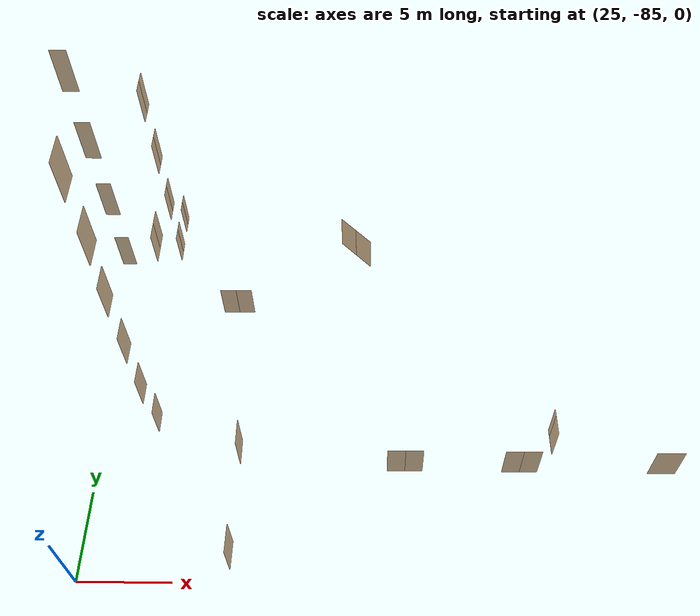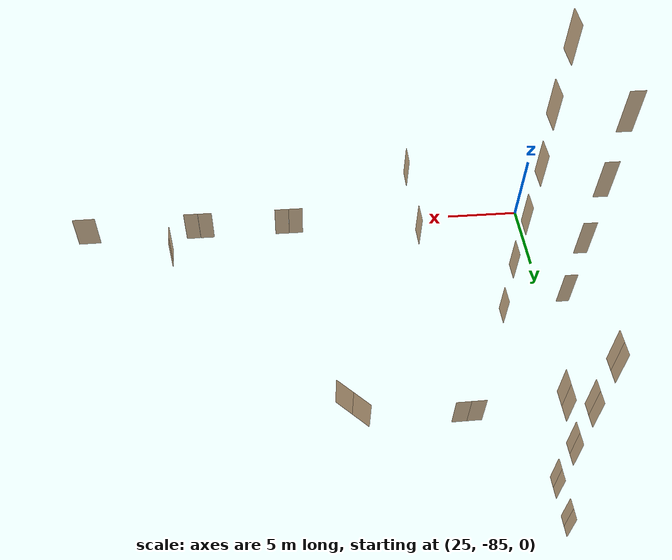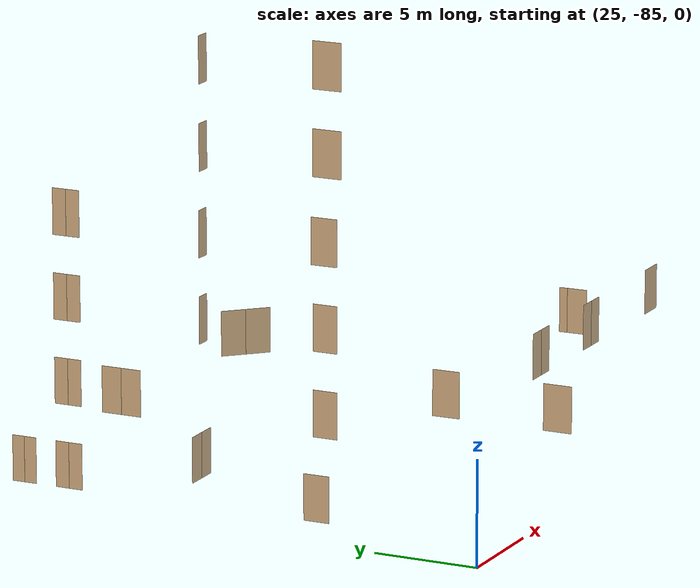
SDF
<sdf version="1.7">
 <world name="sim_world">
  <model name="Snull15">
   <pose>28.084941940783317 -75.57958406451849 0.0 0 0 1.5806374847145241</pose>
   <link name="right">
    <pose>0 0 1.11 0 0 0</pose>
    <visual name="right_visual">
     <geometry><box><size>1.2572084339557512 0.03 2.2</size></box></geometry>
     <material>
      <ambient>0.5 0.25 0 0.6</ambient>
      <diffuse>0.5 0.25 0 0.6</diffuse>
      <pbr><metal><metalness>0.0</metalness></metal></pbr>
     </material>
    </visual>
    <collision name="right_collision">
     <geometry><box><size>1.2572084339557512 0.03 2.2</size></box></geometry>
     <surface><contact><collide_bitmask>0x02</collide_bitmask></contact></surface>
    </collision>
    <inertial>
     <mass>50.0</mass>
     <inertia><ixx>20.17041666666667</ixx><iyy>26.752387693372807</iyy><izz>6.589471026706136</izz></inertia>
    </inertial>
   </link>
   <joint name="right_joint" type="revolute">
    <parent>world</parent>
    <child>right</child>
    <axis><xyz>0 0 1</xyz><limit><lower>0</lower><upper>1.57</upper></limit></axis>
    <pose>0.6336042169778756 0 0 0 0 0</pose>
   </joint>
   <plugin name="register_component" filename="libregister_component.so">
    <component name="Door">
     <v_max_door>0.5</v_max_door>
     <a_max_door>0.3</a_max_door>
     <a_nom_door>0.15</a_nom_door>
     <dx_min_door>0.01</dx_min_door>
     <f_max_door>500.0</f_max_door>
     <ros_interface>true</ros_interface>
     <door name="Snull15" type="SwingDoor" left_joint_name="empty_joint" right_joint_name="right_joint"/>
    </component>
   </plugin>
  </model>
  <model name="Snull19">
   <pose>27.81230631370644 -60.652111413956575 0.0 0 0 1.5707963267948966</pose>
   <link name="right">
    <pose>0.3098140611581979 0 1.11 0 0 0</pose>
    <visual name="right_visual">
     <geometry><box><size>0.6096281223163957 0.03 2.2</size></box></geometry>
     <material>
      <ambient>0.5 0.25 0 0.6</ambient>
      <diffuse>0.5 0.25 0 0.6</diffuse>
      <pbr><metal><metalness>0.0</metalness></metal></pbr>
     </material>
    </visual>
    <collision name="right_collision">
     <geometry><box><size>0.6096281223163957 0.03 2.2</size></box></geometry>
     <surface><contact><collide_bitmask>0x02</collide_bitmask></contact></surface>
    </collision>
    <inertial>
     <mass>50.0</mass>
     <inertia><ixx>20.17041666666667</ixx><iyy>21.71519353132923</iyy><izz>1.55227686466256</izz></inertia>
    </inertial>
   </link>
   <joint name="right_joint" type="prismatic">
    <parent>world</parent>
    <child>right</child>
    <axis>
     <xyz>1 0 0</xyz>
     <limit><lower>0.0</lower><upper>0.6196281223163957</upper><effort>500.0</effort></limit>
    </axis>
   </joint>
   <link name="left">
    <pose>-0.3098140611581979 0 1.11 0 0 0</pose>
    <visual name="left_visual">
     <geometry><box><size>0.6096281223163957 0.03 2.2</size></box></geometry>
     <material>
      <ambient>0.5 0.25 0 0.6</ambient>
      <diffuse>0.5 0.25 0 0.6</diffuse>
      <pbr><metal><metalness>0.0</metalness></metal></pbr>
     </material>
    </visual>
    <collision name="left_collision">
     <geometry><box><size>0.6096281223163957 0.03 2.2</size></box></geometry>
     <surface><contact><collide_bitmask>0x02</collide_bitmask></contact></surface>
    </collision>
    <inertial>
     <mass>50.0</mass>
     <inertia><ixx>20.17041666666667</ixx><iyy>21.71519353132923</iyy><izz>1.55227686466256</izz></inertia>
    </inertial>
   </link>
   <joint name="left_joint" type="prismatic">
    <parent>world</parent>
    <child>left</child>
    <axis>
     <xyz>1 0 0</xyz>
     <limit><lower>-0.6196281223163957</lower><upper>0.0</upper><effort>500.0</effort></limit>
    </axis>
   </joint>
   <plugin name="register_component" filename="libregister_component.so">
    <component name="Door">
     <v_max_door>0.2</v_max_door>
     <a_max_door>0.2</a_max_door>
     <a_nom_door>0.08</a_nom_door>
     <dx_min_door>0.001</dx_min_door>
     <f_max_door>100.0</f_max_door>
     <ros_interface>true</ros_interface>
     <door name="Snull19" type="DoubleSlidingDoor" left_joint_name="left_joint" right_joint_name="right_joint"/>
    </component>
   </plugin>
  </model>
  <model name="Snull20">
   <pose>27.81230631370644 -62.99546354030538 0.0 0 0 1.5707963267948966</pose>
   <link name="right">
    <pose>0.34362282044580716 0 1.11 0 0 0</pose>
    <visual name="right_visual">
     <geometry><box><size>0.6772456408916143 0.03 2.2</size></box></geometry>
     <material>
      <ambient>0.5 0.25 0 0.6</ambient>
      <diffuse>0.5 0.25 0 0.6</diffuse>
      <pbr><metal><metalness>0.0</metalness></metal></pbr>
     </material>
    </visual>
    <collision name="right_collision">
     <geometry><box><size>0.6772456408916143 0.03 2.2</size></box></geometry>
     <surface><contact><collide_bitmask>0x02</collide_bitmask></contact></surface>
    </collision>
    <inertial>
     <mass>50.0</mass>
     <inertia><ixx>20.17041666666667</ixx><iyy>22.077756908777896</iyy><izz>1.9148402421112227</izz></inertia>
    </inertial>
   </link>
   <joint name="right_joint" type="prismatic">
    <parent>world</parent>
    <child>right</child>
    <axis>
     <xyz>1 0 0</xyz>
     <limit><lower>0.0</lower><upper>0.6872456408916143</upper><effort>500.0</effort></limit>
    </axis>
   </joint>
   <link name="left">
    <pose>-0.34362282044580716 0 1.11 0 0 0</pose>
    <visual name="left_visual">
     <geometry><box><size>0.6772456408916143 0.03 2.2</size></box></geometry>
     <material>
      <ambient>0.5 0.25 0 0.6</ambient>
      <diffuse>0.5 0.25 0 0.6</diffuse>
      <pbr><metal><metalness>0.0</metalness></metal></pbr>
     </material>
    </visual>
    <collision name="left_collision">
     <geometry><box><size>0.6772456408916143 0.03 2.2</size></box></geometry>
     <surface><contact><collide_bitmask>0x02</collide_bitmask></contact></surface>
    </collision>
    <inertial>
     <mass>50.0</mass>
     <inertia><ixx>20.17041666666667</ixx><iyy>22.077756908777896</iyy><izz>1.9148402421112227</izz></inertia>
    </inertial>
   </link>
   <joint name="left_joint" type="prismatic">
    <parent>world</parent>
    <child>left</child>
    <axis>
     <xyz>1 0 0</xyz>
     <limit><lower>-0.6872456408916143</lower><upper>0.0</upper><effort>500.0</effort></limit>
    </axis>
   </joint>
   <plugin name="register_component" filename="libregister_component.so">
    <component name="Door">
     <v_max_door>0.2</v_max_door>
     <a_max_door>0.2</a_max_door>
     <a_nom_door>0.08</a_nom_door>
     <dx_min_door>0.001</dx_min_door>
     <f_max_door>100.0</f_max_door>
     <ros_interface>true</ros_interface>
     <door name="Snull20" type="DoubleSlidingDoor" left_joint_name="left_joint" right_joint_name="right_joint"/>
    </component>
   </plugin>
  </model>
  <model name="Snull21">
   <pose>31.943863644849326 -67.73421573386099 0.0 0 0 -3.1266463520142143</pose>
   <link name="right">
    <pose>0.4677836453547332 0 1.11 0 0 0</pose>
    <visual name="right_visual">
     <geometry><box><size>0.9255672907094664 0.03 2.2</size></box></geometry>
     <material>
      <ambient>0.5 0.25 0 0.6</ambient>
      <diffuse>0.5 0.25 0 0.6</diffuse>
      <pbr><metal><metalness>0.0</metalness></metal></pbr>
     </material>
    </visual>
    <collision name="right_collision">
     <geometry><box><size>0.9255672907094664 0.03 2.2</size></box></geometry>
     <surface><contact><collide_bitmask>0x02</collide_bitmask></contact></surface>
    </collision>
    <inertial>
     <mass>50.0</mass>
     <inertia><ixx>20.17041666666667</ixx><iyy>23.736145040130264</iyy><izz>3.573228373463592</izz></inertia>
    </inertial>
   </link>
   <joint name="right_joint" type="revolute">
    <parent>world</parent>
    <child>right</child>
    <axis><xyz>0 0 1</xyz><limit><lower>0</lower><upper>1.57</upper></limit></axis>
    <pose>0.4677836453547332 0 0 0 0 0</pose>
   </joint>
   <link name="left">
    <pose>-0.4677836453547332 0 1.11 0 0 0</pose>
    <visual name="left_visual">
     <geometry><box><size>0.9255672907094664 0.03 2.2</size></box></geometry>
     <material>
      <ambient>0.5 0.25 0 0.6</ambient>
      <diffuse>0.5 0.25 0 0.6</diffuse>
      <pbr><metal><metalness>0.0</metalness></metal></pbr>
     </material>
    </visual>
    <collision name="left_collision">
     <geometry><box><size>0.9255672907094664 0.03 2.2</size></box></geometry>
     <surface><contact><collide_bitmask>0x02</collide_bitmask></contact></surface>
    </collision>
    <inertial>
     <mass>50.0</mass>
     <inertia><ixx>20.17041666666667</ixx><iyy>23.736145040130264</iyy><izz>3.573228373463592</izz></inertia>
    </inertial>
   </link>
   <joint name="left_joint" type="revolute">
    <parent>world</parent>
    <child>left</child>
    <axis><xyz>0 0 1</xyz><limit><lower>-1.57</lower><upper>0</upper></limit></axis>
    <pose>-0.4677836453547332 0 0 0 0 0</pose>
   </joint>
   <plugin name="register_component" filename="libregister_component.so">
    <component name="Door">
     <v_max_door>0.5</v_max_door>
     <a_max_door>0.3</a_max_door>
     <a_nom_door>0.15</a_nom_door>
     <dx_min_door>0.01</dx_min_door>
     <f_max_door>500.0</f_max_door>
     <ros_interface>true</ros_interface>
     <door name="Snull21" type="DoubleSwingDoor" left_joint_name="left_joint" right_joint_name="right_joint"/>
    </component>
   </plugin>
  </model>
  <model name="0null15">
   <pose>28.038363887540584 -76.04984505096512 4.0 0 0 1.565694645745355</pose>
   <link name="right">
    <pose>0 0 1.11 0 0 0</pose>
    <visual name="right_visual">
     <geometry><box><size>1.1975727472500945 0.03 2.2</size></box></geometry>
     <material>
      <ambient>0.5 0.25 0 0.6</ambient>
      <diffuse>0.5 0.25 0 0.6</diffuse>
      <pbr><metal><metalness>0.0</metalness></metal></pbr>
     </material>
    </visual>
    <collision name="right_collision">
     <geometry><box><size>1.1975727472500945 0.03 2.2</size></box></geometry>
     <surface><contact><collide_bitmask>0x02</collide_bitmask></contact></surface>
    </collision>
    <inertial>
     <mass>50.0</mass>
     <inertia><ixx>20.17041666666667</ixx><iyy>26.14241868731725</iyy><izz>5.979502020650578</izz></inertia>
    </inertial>
   </link>
   <joint name="right_joint" type="revolute">
    <parent>world</parent>
    <child>right</child>
    <axis><xyz>0 0 1</xyz><limit><lower>0</lower><upper>1.57</upper></limit></axis>
    <pose>0.6037863736250473 0 0 0 0 0</pose>
   </joint>
   <plugin name="register_component" filename="libregister_component.so">
    <component name="Door">
     <v_max_door>0.5</v_max_door>
     <a_max_door>0.3</a_max_door>
     <a_nom_door>0.15</a_nom_door>
     <dx_min_door>0.01</dx_min_door>
     <f_max_door>500.0</f_max_door>
     <ros_interface>true</ros_interface>
     <door name="0null15" type="SwingDoor" left_joint_name="empty_joint" right_joint_name="right_joint"/>
    </component>
   </plugin>
  </model>
  <model name="0null20">
   <pose>27.81230631370644 -62.99546354030538 4.0 0 0 1.5707963267948966</pose>
   <link name="right">
    <pose>0.34362282044580716 0 1.11 0 0 0</pose>
    <visual name="right_visual">
     <geometry><box><size>0.6772456408916143 0.03 2.2</size></box></geometry>
     <material>
      <ambient>0.5 0.25 0 0.6</ambient>
      <diffuse>0.5 0.25 0 0.6</diffuse>
      <pbr><metal><metalness>0.0</metalness></metal></pbr>
     </material>
    </visual>
    <collision name="right_collision">
     <geometry><box><size>0.6772456408916143 0.03 2.2</size></box></geometry>
     <surface><contact><collide_bitmask>0x02</collide_bitmask></contact></surface>
    </collision>
    <inertial>
     <mass>50.0</mass>
     <inertia><ixx>20.17041666666667</ixx><iyy>22.077756908777896</iyy><izz>1.9148402421112227</izz></inertia>
    </inertial>
   </link>
   <joint name="right_joint" type="prismatic">
    <parent>world</parent>
    <child>right</child>
    <axis>
     <xyz>1 0 0</xyz>
     <limit><lower>0.0</lower><upper>0.6872456408916143</upper><effort>500.0</effort></limit>
    </axis>
   </joint>
   <link name="left">
    <pose>-0.34362282044580716 0 1.11 0 0 0</pose>
    <visual name="left_visual">
     <geometry><box><size>0.6772456408916143 0.03 2.2</size></box></geometry>
     <material>
      <ambient>0.5 0.25 0 0.6</ambient>
      <diffuse>0.5 0.25 0 0.6</diffuse>
      <pbr><metal><metalness>0.0</metalness></metal></pbr>
     </material>
    </visual>
    <collision name="left_collision">
     <geometry><box><size>0.6772456408916143 0.03 2.2</size></box></geometry>
     <surface><contact><collide_bitmask>0x02</collide_bitmask></contact></surface>
    </collision>
    <inertial>
     <mass>50.0</mass>
     <inertia><ixx>20.17041666666667</ixx><iyy>22.077756908777896</iyy><izz>1.9148402421112227</izz></inertia>
    </inertial>
   </link>
   <joint name="left_joint" type="prismatic">
    <parent>world</parent>
    <child>left</child>
    <axis>
     <xyz>1 0 0</xyz>
     <limit><lower>-0.6872456408916143</lower><upper>0.0</upper><effort>500.0</effort></limit>
    </axis>
   </joint>
   <plugin name="register_component" filename="libregister_component.so">
    <component name="Door">
     <v_max_door>0.2</v_max_door>
     <a_max_door>0.2</a_max_door>
     <a_nom_door>0.08</a_nom_door>
     <dx_min_door>0.001</dx_min_door>
     <f_max_door>100.0</f_max_door>
     <ros_interface>true</ros_interface>
     <door name="0null20" type="DoubleSlidingDoor" left_joint_name="left_joint" right_joint_name="right_joint"/>
    </component>
   </plugin>
  </model>
  <model name="0null33">
   <pose>27.455960870701546 -65.96759138259338 4.0 0 0 1.5707963267948966</pose>
   <link name="right">
    <pose>0.4972370533547412 0 1.11 0 0 0</pose>
    <visual name="right_visual">
     <geometry><box><size>0.9844741067094824 0.03 2.2</size></box></geometry>
     <material>
      <ambient>0.5 0.25 0 0.6</ambient>
      <diffuse>0.5 0.25 0 0.6</diffuse>
      <pbr><metal><metalness>0.0</metalness></metal></pbr>
     </material>
    </visual>
    <collision name="right_collision">
     <geometry><box><size>0.9844741067094824 0.03 2.2</size></box></geometry>
     <surface><contact><collide_bitmask>0x02</collide_bitmask></contact></surface>
    </collision>
    <inertial>
     <mass>50.0</mass>
     <inertia><ixx>20.17041666666667</ixx><iyy>24.204955278255976</iyy><izz>4.042038611589306</izz></inertia>
    </inertial>
   </link>
   <joint name="right_joint" type="revolute">
    <parent>world</parent>
    <child>right</child>
    <axis><xyz>0 0 -1</xyz><limit><lower>0</lower><upper>1.57</upper></limit></axis>
    <pose>0.4972370533547412 0 0 0 0 0</pose>
   </joint>
   <link name="left">
    <pose>-0.4972370533547412 0 1.11 0 0 0</pose>
    <visual name="left_visual">
     <geometry><box><size>0.9844741067094824 0.03 2.2</size></box></geometry>
     <material>
      <ambient>0.5 0.25 0 0.6</ambient>
      <diffuse>0.5 0.25 0 0.6</diffuse>
      <pbr><metal><metalness>0.0</metalness></metal></pbr>
     </material>
    </visual>
    <collision name="left_collision">
     <geometry><box><size>0.9844741067094824 0.03 2.2</size></box></geometry>
     <surface><contact><collide_bitmask>0x02</collide_bitmask></contact></surface>
    </collision>
    <inertial>
     <mass>50.0</mass>
     <inertia><ixx>20.17041666666667</ixx><iyy>24.204955278255976</iyy><izz>4.042038611589306</izz></inertia>
    </inertial>
   </link>
   <joint name="left_joint" type="revolute">
    <parent>world</parent>
    <child>left</child>
    <axis><xyz>0 0 -1</xyz><limit><lower>-1.57</lower><upper>0</upper></limit></axis>
    <pose>-0.4972370533547412 0 0 0 0 0</pose>
   </joint>
   <plugin name="register_component" filename="libregister_component.so">
    <component name="Door">
     <v_max_door>0.5</v_max_door>
     <a_max_door>0.3</a_max_door>
     <a_nom_door>0.15</a_nom_door>
     <dx_min_door>0.01</dx_min_door>
     <f_max_door>500.0</f_max_door>
     <ros_interface>true</ros_interface>
     <door name="0null33" type="DoubleSwingDoor" left_joint_name="left_joint" right_joint_name="right_joint"/>
    </component>
   </plugin>
  </model>
  <model name="0null44">
   <pose>41.968468804838864 -80.45021095471002 4.0 0 0 0.0</pose>
   <link name="right">
    <pose>0.450033603405144 0 1.11 0 0 0</pose>
    <visual name="right_visual">
     <geometry><box><size>0.890067206810288 0.03 2.2</size></box></geometry>
     <material>
      <ambient>0.5 0.25 0 0.6</ambient>
      <diffuse>0.5 0.25 0 0.6</diffuse>
      <pbr><metal><metalness>0.0</metalness></metal></pbr>
     </material>
    </visual>
    <collision name="right_collision">
     <geometry><box><size>0.890067206810288 0.03 2.2</size></box></geometry>
     <surface><contact><collide_bitmask>0x02</collide_bitmask></contact></surface>
    </collision>
    <inertial>
     <mass>50.0</mass>
     <inertia><ixx>20.17041666666667</ixx><iyy>23.467581802662785</iyy><izz>3.3046651359961166</izz></inertia>
    </inertial>
   </link>
   <joint name="right_joint" type="revolute">
    <parent>world</parent>
    <child>right</child>
    <axis><xyz>0 0 -1</xyz><limit><lower>0</lower><upper>1.57</upper></limit></axis>
    <pose>0.450033603405144 0 0 0 0 0</pose>
   </joint>
   <link name="left">
    <pose>-0.450033603405144 0 1.11 0 0 0</pose>
    <visual name="left_visual">
     <geometry><box><size>0.890067206810288 0.03 2.2</size></box></geometry>
     <material>
      <ambient>0.5 0.25 0 0.6</ambient>
      <diffuse>0.5 0.25 0 0.6</diffuse>
      <pbr><metal><metalness>0.0</metalness></metal></pbr>
     </material>
    </visual>
    <collision name="left_collision">
     <geometry><box><size>0.890067206810288 0.03 2.2</size></box></geometry>
     <surface><contact><collide_bitmask>0x02</collide_bitmask></contact></surface>
    </collision>
    <inertial>
     <mass>50.0</mass>
     <inertia><ixx>20.17041666666667</ixx><iyy>23.467581802662785</iyy><izz>3.3046651359961166</izz></inertia>
    </inertial>
   </link>
   <joint name="left_joint" type="revolute">
    <parent>world</parent>
    <child>left</child>
    <axis><xyz>0 0 -1</xyz><limit><lower>-1.57</lower><upper>0</upper></limit></axis>
    <pose>-0.450033603405144 0 0 0 0 0</pose>
   </joint>
   <plugin name="register_component" filename="libregister_component.so">
    <component name="Door">
     <v_max_door>0.5</v_max_door>
     <a_max_door>0.3</a_max_door>
     <a_nom_door>0.15</a_nom_door>
     <dx_min_door>0.01</dx_min_door>
     <f_max_door>500.0</f_max_door>
     <ros_interface>true</ros_interface>
     <door name="0null44" type="DoubleSwingDoor" left_joint_name="left_joint" right_joint_name="right_joint"/>
    </component>
   </plugin>
  </model>
  <model name="0null45">
   <pose>47.80160922973525 -80.45021095471002 4.0 0 0 0.0</pose>
   <link name="right">
    <pose>0.45003360340514575 0 1.11 0 0 0</pose>
    <visual name="right_visual">
     <geometry><box><size>0.8900672068102915 0.03 2.2</size></box></geometry>
     <material>
      <ambient>0.5 0.25 0 0.6</ambient>
      <diffuse>0.5 0.25 0 0.6</diffuse>
      <pbr><metal><metalness>0.0</metalness></metal></pbr>
     </material>
    </visual>
    <collision name="right_collision">
     <geometry><box><size>0.8900672068102915 0.03 2.2</size></box></geometry>
     <surface><contact><collide_bitmask>0x02</collide_bitmask></contact></surface>
    </collision>
    <inertial>
     <mass>50.0</mass>
     <inertia><ixx>20.17041666666667</ixx><iyy>23.467581802662814</iyy><izz>3.3046651359961428</izz></inertia>
    </inertial>
   </link>
   <joint name="right_joint" type="revolute">
    <parent>world</parent>
    <child>right</child>
    <axis><xyz>0 0 -1</xyz><limit><lower>0</lower><upper>1.57</upper></limit></axis>
    <pose>0.45003360340514575 0 0 0 0 0</pose>
   </joint>
   <link name="left">
    <pose>-0.45003360340514575 0 1.11 0 0 0</pose>
    <visual name="left_visual">
     <geometry><box><size>0.8900672068102915 0.03 2.2</size></box></geometry>
     <material>
      <ambient>0.5 0.25 0 0.6</ambient>
      <diffuse>0.5 0.25 0 0.6</diffuse>
      <pbr><metal><metalness>0.0</metalness></metal></pbr>
     </material>
    </visual>
    <collision name="left_collision">
     <geometry><box><size>0.8900672068102915 0.03 2.2</size></box></geometry>
     <surface><contact><collide_bitmask>0x02</collide_bitmask></contact></surface>
    </collision>
    <inertial>
     <mass>50.0</mass>
     <inertia><ixx>20.17041666666667</ixx><iyy>23.467581802662814</iyy><izz>3.3046651359961428</izz></inertia>
    </inertial>
   </link>
   <joint name="left_joint" type="revolute">
    <parent>world</parent>
    <child>left</child>
    <axis><xyz>0 0 -1</xyz><limit><lower>-1.57</lower><upper>0</upper></limit></axis>
    <pose>-0.45003360340514575 0 0 0 0 0</pose>
   </joint>
   <plugin name="register_component" filename="libregister_component.so">
    <component name="Door">
     <v_max_door>0.5</v_max_door>
     <a_max_door>0.3</a_max_door>
     <a_nom_door>0.15</a_nom_door>
     <dx_min_door>0.01</dx_min_door>
     <f_max_door>500.0</f_max_door>
     <ros_interface>true</ros_interface>
     <door name="0null45" type="DoubleSwingDoor" left_joint_name="left_joint" right_joint_name="right_joint"/>
    </component>
   </plugin>
  </model>
  <model name="0null46">
   <pose>49.5582459022514 -78.73606392114397 4.0 0 0 1.5927314753126312</pose>
   <link name="right">
    <pose>0.5027852228706735 0 1.11 0 0 0</pose>
    <visual name="right_visual">
     <geometry><box><size>0.3922281782965389 0.03 2.2</size></box></geometry>
     <material>
      <ambient>0.5 0.25 0 0.6</ambient>
      <diffuse>0.5 0.25 0 0.6</diffuse>
      <pbr><metal><metalness>0.0</metalness></metal></pbr>
     </material>
    </visual>
    <collision name="right_collision">
     <geometry><box><size>0.3922281782965389 0.03 2.2</size></box></geometry>
     <surface><contact><collide_bitmask>0x02</collide_bitmask></contact></surface>
    </collision>
    <inertial>
     <mass>50.0</mass>
     <inertia><ixx>20.17041666666667</ixx><iyy>20.807678932707592</iyy><izz>0.644762266040923</izz></inertia>
    </inertial>
   </link>
   <joint name="right_joint" type="revolute">
    <parent>world</parent>
    <child>right</child>
    <axis><xyz>0 0 -1</xyz><limit><lower>0</lower><upper>1.57</upper></limit></axis>
    <pose>0.20111408914826945 0 0 0 0 0</pose>
   </joint>
   <link name="left">
    <pose>-0.20111408914826945 0 1.11 0 0 0</pose>
    <visual name="left_visual">
     <geometry><box><size>0.995570445741347 0.03 2.2</size></box></geometry>
     <material>
      <ambient>0.5 0.25 0 0.6</ambient>
      <diffuse>0.5 0.25 0 0.6</diffuse>
      <pbr><metal><metalness>0.0</metalness></metal></pbr>
     </material>
    </visual>
    <collision name="left_collision">
     <geometry><box><size>0.995570445741347 0.03 2.2</size></box></geometry>
     <surface><contact><collide_bitmask>0x02</collide_bitmask></contact></surface>
    </collision>
    <inertial>
     <mass>50.0</mass>
     <inertia><ixx>20.17041666666667</ixx><iyy>24.296502135140106</iyy><izz>4.133585468473435</izz></inertia>
    </inertial>
   </link>
   <joint name="left_joint" type="revolute">
    <parent>world</parent>
    <child>left</child>
    <axis><xyz>0 0 -1</xyz><limit><lower>-1.57</lower><upper>0</upper></limit></axis>
    <pose>-0.5027852228706735 0 0 0 0 0</pose>
   </joint>
   <plugin name="register_component" filename="libregister_component.so">
    <component name="Door">
     <v_max_door>0.5</v_max_door>
     <a_max_door>0.3</a_max_door>
     <a_nom_door>0.15</a_nom_door>
     <dx_min_door>0.01</dx_min_door>
     <f_max_door>500.0</f_max_door>
     <ros_interface>true</ros_interface>
     <door name="0null46" type="DoubleSwingDoor" left_joint_name="left_joint" right_joint_name="right_joint"/>
    </component>
   </plugin>
  </model>
  <model name="0null47">
   <pose>55.0205727513721 -80.46839413060519 4.0 0 0 -3.1302739790294476</pose>
   <link name="right">
    <pose>0 0 1.11 0 0 0</pose>
    <visual name="right_visual">
     <geometry><box><size>1.4018815002880707 0.03 2.2</size></box></geometry>
     <material>
      <ambient>0.5 0.25 0 0.6</ambient>
      <diffuse>0.5 0.25 0 0.6</diffuse>
      <pbr><metal><metalness>0.0</metalness></metal></pbr>
     </material>
    </visual>
    <collision name="right_collision">
     <geometry><box><size>1.4018815002880707 0.03 2.2</size></box></geometry>
     <surface><contact><collide_bitmask>0x02</collide_bitmask></contact></surface>
    </collision>
    <inertial>
     <mass>50.0</mass>
     <inertia><ixx>20.17041666666667</ixx><iyy>28.355298920208057</iyy><izz>8.192382253541382</izz></inertia>
    </inertial>
   </link>
   <joint name="right_joint" type="revolute">
    <parent>world</parent>
    <child>right</child>
    <axis><xyz>0 0 -1</xyz><limit><lower>0</lower><upper>1.57</upper></limit></axis>
    <pose>0.7059407501440353 0 0 0 0 0</pose>
   </joint>
   <plugin name="register_component" filename="libregister_component.so">
    <component name="Door">
     <v_max_door>0.5</v_max_door>
     <a_max_door>0.3</a_max_door>
     <a_nom_door>0.15</a_nom_door>
     <dx_min_door>0.01</dx_min_door>
     <f_max_door>500.0</f_max_door>
     <ros_interface>true</ros_interface>
     <door name="0null47" type="SwingDoor" left_joint_name="empty_joint" right_joint_name="right_joint"/>
    </component>
   </plugin>
  </model>
  <model name="0null58">
   <pose>33.55398947093303 -79.47173580256128 4.0 0 0 -1.5568600437993017</pose>
   <link name="right">
    <pose>0 0 1.11 0 0 0</pose>
    <visual name="right_visual">
     <geometry><box><size>1.3322876860468875 0.03 2.2</size></box></geometry>
     <material>
      <ambient>0.5 0.25 0 0.6</ambient>
      <diffuse>0.5 0.25 0 0.6</diffuse>
      <pbr><metal><metalness>0.0</metalness></metal></pbr>
     </material>
    </visual>
    <collision name="right_collision">
     <geometry><box><size>1.3322876860468875 0.03 2.2</size></box></geometry>
     <surface><contact><collide_bitmask>0x02</collide_bitmask></contact></surface>
    </collision>
    <inertial>
     <mass>50.0</mass>
     <inertia><ixx>20.17041666666667</ixx><iyy>27.562460326634046</iyy><izz>7.3995436599673745</izz></inertia>
    </inertial>
   </link>
   <joint name="right_joint" type="revolute">
    <parent>world</parent>
    <child>right</child>
    <axis><xyz>0 0 -1</xyz><limit><lower>0</lower><upper>1.57</upper></limit></axis>
    <pose>0.6711438430234438 0 0 0 0 0</pose>
   </joint>
   <plugin name="register_component" filename="libregister_component.so">
    <component name="Door">
     <v_max_door>0.5</v_max_door>
     <a_max_door>0.3</a_max_door>
     <a_nom_door>0.15</a_nom_door>
     <dx_min_door>0.01</dx_min_door>
     <f_max_door>500.0</f_max_door>
     <ros_interface>true</ros_interface>
     <door name="0null58" type="SwingDoor" left_joint_name="empty_joint" right_joint_name="right_joint"/>
    </component>
   </plugin>
  </model>
  <model name="0null59">
   <pose>33.564985251838834 -85.02352238360149 4.0 0 0 -1.5789067086965276</pose>
   <link name="right">
    <pose>0 0 1.11 0 0 0</pose>
    <visual name="right_visual">
     <geometry><box><size>1.3895158415713826 0.03 2.2</size></box></geometry>
     <material>
      <ambient>0.5 0.25 0 0.6</ambient>
      <diffuse>0.5 0.25 0 0.6</diffuse>
      <pbr><metal><metalness>0.0</metalness></metal></pbr>
     </material>
    </visual>
    <collision name="right_collision">
     <geometry><box><size>1.3895158415713826 0.03 2.2</size></box></geometry>
     <surface><contact><collide_bitmask>0x02</collide_bitmask></contact></surface>
    </collision>
    <inertial>
     <mass>50.0</mass>
     <inertia><ixx>20.17041666666667</ixx><iyy>28.21147614157429</iyy><izz>8.048559474907616</izz></inertia>
    </inertial>
   </link>
   <joint name="right_joint" type="revolute">
    <parent>world</parent>
    <child>right</child>
    <axis><xyz>0 0 -1</xyz><limit><lower>0</lower><upper>1.57</upper></limit></axis>
    <pose>0.6997579207856913 0 0 0 0 0</pose>
   </joint>
   <plugin name="register_component" filename="libregister_component.so">
    <component name="Door">
     <v_max_door>0.5</v_max_door>
     <a_max_door>0.3</a_max_door>
     <a_nom_door>0.15</a_nom_door>
     <dx_min_door>0.01</dx_min_door>
     <f_max_door>500.0</f_max_door>
     <ros_interface>true</ros_interface>
     <door name="0null59" type="SwingDoor" left_joint_name="empty_joint" right_joint_name="right_joint"/>
    </component>
   </plugin>
  </model>
  <model name="0null178">
   <pose>39.23412239106894 -66.33920770638088 4.0 0 0 -0.7939281046788268</pose>
   <link name="right">
    <pose>0.6089753965193088 0 1.11 0 0 0</pose>
    <visual name="right_visual">
     <geometry><box><size>1.2079507930386175 0.03 2.2</size></box></geometry>
     <material>
      <ambient>0.5 0.25 0 0.6</ambient>
      <diffuse>0.5 0.25 0 0.6</diffuse>
      <pbr><metal><metalness>0.0</metalness></metal></pbr>
     </material>
    </visual>
    <collision name="right_collision">
     <geometry><box><size>1.2079507930386175 0.03 2.2</size></box></geometry>
     <surface><contact><collide_bitmask>0x02</collide_bitmask></contact></surface>
    </collision>
    <inertial>
     <mass>50.0</mass>
     <inertia><ixx>20.17041666666667</ixx><iyy>26.246437993344276</iyy><izz>6.083521326677604</izz></inertia>
    </inertial>
   </link>
   <joint name="right_joint" type="revolute">
    <parent>world</parent>
    <child>right</child>
    <axis><xyz>0 0 -1</xyz><limit><lower>0</lower><upper>1.57</upper></limit></axis>
    <pose>0.6089753965193088 0 0 0 0 0</pose>
   </joint>
   <link name="left">
    <pose>-0.6089753965193088 0 1.11 0 0 0</pose>
    <visual name="left_visual">
     <geometry><box><size>1.2079507930386175 0.03 2.2</size></box></geometry>
     <material>
      <ambient>0.5 0.25 0 0.6</ambient>
      <diffuse>0.5 0.25 0 0.6</diffuse>
      <pbr><metal><metalness>0.0</metalness></metal></pbr>
     </material>
    </visual>
    <collision name="left_collision">
     <geometry><box><size>1.2079507930386175 0.03 2.2</size></box></geometry>
     <surface><contact><collide_bitmask>0x02</collide_bitmask></contact></surface>
    </collision>
    <inertial>
     <mass>50.0</mass>
     <inertia><ixx>20.17041666666667</ixx><iyy>26.246437993344276</iyy><izz>6.083521326677604</izz></inertia>
    </inertial>
   </link>
   <joint name="left_joint" type="revolute">
    <parent>world</parent>
    <child>left</child>
    <axis><xyz>0 0 -1</xyz><limit><lower>-1.57</lower><upper>0</upper></limit></axis>
    <pose>-0.6089753965193088 0 0 0 0 0</pose>
   </joint>
   <plugin name="register_component" filename="libregister_component.so">
    <component name="Door">
     <v_max_door>0.5</v_max_door>
     <a_max_door>0.3</a_max_door>
     <a_nom_door>0.15</a_nom_door>
     <dx_min_door>0.01</dx_min_door>
     <f_max_door>500.0</f_max_door>
     <ros_interface>true</ros_interface>
     <door name="0null178" type="DoubleSwingDoor" left_joint_name="left_joint" right_joint_name="right_joint"/>
    </component>
   </plugin>
  </model>
  <model name="1null15">
   <pose>28.038363887540584 -76.04984505096512 8.0 0 0 1.565694645745355</pose>
   <link name="right">
    <pose>0 0 1.11 0 0 0</pose>
    <visual name="right_visual">
     <geometry><box><size>1.1975727472500945 0.03 2.2</size></box></geometry>
     <material>
      <ambient>0.5 0.25 0 0.6</ambient>
      <diffuse>0.5 0.25 0 0.6</diffuse>
      <pbr><metal><metalness>0.0</metalness></metal></pbr>
     </material>
    </visual>
    <collision name="right_collision">
     <geometry><box><size>1.1975727472500945 0.03 2.2</size></box></geometry>
     <surface><contact><collide_bitmask>0x02</collide_bitmask></contact></surface>
    </collision>
    <inertial>
     <mass>50.0</mass>
     <inertia><ixx>20.17041666666667</ixx><iyy>26.14241868731725</iyy><izz>5.979502020650578</izz></inertia>
    </inertial>
   </link>
   <joint name="right_joint" type="revolute">
    <parent>world</parent>
    <child>right</child>
    <axis><xyz>0 0 1</xyz><limit><lower>0</lower><upper>1.57</upper></limit></axis>
    <pose>0.6037863736250473 0 0 0 0 0</pose>
   </joint>
   <plugin name="register_component" filename="libregister_component.so">
    <component name="Door">
     <v_max_door>0.5</v_max_door>
     <a_max_door>0.3</a_max_door>
     <a_nom_door>0.15</a_nom_door>
     <dx_min_door>0.01</dx_min_door>
     <f_max_door>500.0</f_max_door>
     <ros_interface>true</ros_interface>
     <door name="1null15" type="SwingDoor" left_joint_name="empty_joint" right_joint_name="right_joint"/>
    </component>
   </plugin>
  </model>
  <model name="1null20">
   <pose>27.81230631370644 -62.99546354030538 8.0 0 0 1.5707963267948966</pose>
   <link name="right">
    <pose>0.34362282044580716 0 1.11 0 0 0</pose>
    <visual name="right_visual">
     <geometry><box><size>0.6772456408916143 0.03 2.2</size></box></geometry>
     <material>
      <ambient>0.5 0.25 0 0.6</ambient>
      <diffuse>0.5 0.25 0 0.6</diffuse>
      <pbr><metal><metalness>0.0</metalness></metal></pbr>
     </material>
    </visual>
    <collision name="right_collision">
     <geometry><box><size>0.6772456408916143 0.03 2.2</size></box></geometry>
     <surface><contact><collide_bitmask>0x02</collide_bitmask></contact></surface>
    </collision>
    <inertial>
     <mass>50.0</mass>
     <inertia><ixx>20.17041666666667</ixx><iyy>22.077756908777896</iyy><izz>1.9148402421112227</izz></inertia>
    </inertial>
   </link>
   <joint name="right_joint" type="prismatic">
    <parent>world</parent>
    <child>right</child>
    <axis>
     <xyz>1 0 0</xyz>
     <limit><lower>0.0</lower><upper>0.6872456408916143</upper><effort>500.0</effort></limit>
    </axis>
   </joint>
   <link name="left">
    <pose>-0.34362282044580716 0 1.11 0 0 0</pose>
    <visual name="left_visual">
     <geometry><box><size>0.6772456408916143 0.03 2.2</size></box></geometry>
     <material>
      <ambient>0.5 0.25 0 0.6</ambient>
      <diffuse>0.5 0.25 0 0.6</diffuse>
      <pbr><metal><metalness>0.0</metalness></metal></pbr>
     </material>
    </visual>
    <collision name="left_collision">
     <geometry><box><size>0.6772456408916143 0.03 2.2</size></box></geometry>
     <surface><contact><collide_bitmask>0x02</collide_bitmask></contact></surface>
    </collision>
    <inertial>
     <mass>50.0</mass>
     <inertia><ixx>20.17041666666667</ixx><iyy>22.077756908777896</iyy><izz>1.9148402421112227</izz></inertia>
    </inertial>
   </link>
   <joint name="left_joint" type="prismatic">
    <parent>world</parent>
    <child>left</child>
    <axis>
     <xyz>1 0 0</xyz>
     <limit><lower>-0.6872456408916143</lower><upper>0.0</upper><effort>500.0</effort></limit>
    </axis>
   </joint>
   <plugin name="register_component" filename="libregister_component.so">
    <component name="Door">
     <v_max_door>0.2</v_max_door>
     <a_max_door>0.2</a_max_door>
     <a_nom_door>0.08</a_nom_door>
     <dx_min_door>0.001</dx_min_door>
     <f_max_door>100.0</f_max_door>
     <ros_interface>true</ros_interface>
     <door name="1null20" type="DoubleSlidingDoor" left_joint_name="left_joint" right_joint_name="right_joint"/>
    </component>
   </plugin>
  </model>
  <model name="1null54">
   <pose>27.208938505768565 -70.32860396520176 8.0 0 0 3.141592653589793</pose>
   <link name="right">
    <pose>0 0 1.11 0 0 0</pose>
    <visual name="right_visual">
     <geometry><box><size>0.708067430832992 0.03 2.2</size></box></geometry>
     <material>
      <ambient>0.5 0.25 0 0.6</ambient>
      <diffuse>0.5 0.25 0 0.6</diffuse>
      <pbr><metal><metalness>0.0</metalness></metal></pbr>
     </material>
    </visual>
    <collision name="right_collision">
     <geometry><box><size>0.708067430832992 0.03 2.2</size></box></geometry>
     <surface><contact><collide_bitmask>0x02</collide_bitmask></contact></surface>
    </collision>
    <inertial>
     <mass>50.0</mass>
     <inertia><ixx>20.17041666666667</ixx><iyy>22.255664527526815</iyy><izz>2.092747860860141</izz></inertia>
    </inertial>
   </link>
   <joint name="right_joint" type="revolute">
    <parent>world</parent>
    <child>right</child>
    <axis><xyz>0 0 1</xyz><limit><lower>0</lower><upper>1.57</upper></limit></axis>
    <pose>0.359033715416496 0 0 0 0 0</pose>
   </joint>
   <plugin name="register_component" filename="libregister_component.so">
    <component name="Door">
     <v_max_door>0.5</v_max_door>
     <a_max_door>0.3</a_max_door>
     <a_nom_door>0.15</a_nom_door>
     <dx_min_door>0.01</dx_min_door>
     <f_max_door>500.0</f_max_door>
     <ros_interface>true</ros_interface>
     <door name="1null54" type="SwingDoor" left_joint_name="empty_joint" right_joint_name="right_joint"/>
    </component>
   </plugin>
  </model>
  <model name="2null15">
   <pose>28.03089646417502 -76.0071687264309 12.0 0 0 1.577582638231415</pose>
   <link name="right">
    <pose>0 0 1.11 0 0 0</pose>
    <visual name="right_visual">
     <geometry><box><size>1.2829394539317445 0.03 2.2</size></box></geometry>
     <material>
      <ambient>0.5 0.25 0 0.6</ambient>
      <diffuse>0.5 0.25 0 0.6</diffuse>
      <pbr><metal><metalness>0.0</metalness></metal></pbr>
     </material>
    </visual>
    <collision name="right_collision">
     <geometry><box><size>1.2829394539317445 0.03 2.2</size></box></geometry>
     <surface><contact><collide_bitmask>0x02</collide_bitmask></contact></surface>
    </collision>
    <inertial>
     <mass>50.0</mass>
     <inertia><ixx>20.17041666666667</ixx><iyy>27.02472351022785</iyy><izz>6.861806843561178</izz></inertia>
    </inertial>
   </link>
   <joint name="right_joint" type="revolute">
    <parent>world</parent>
    <child>right</child>
    <axis><xyz>0 0 1</xyz><limit><lower>0</lower><upper>1.57</upper></limit></axis>
    <pose>0.6464697269658722 0 0 0 0 0</pose>
   </joint>
   <plugin name="register_component" filename="libregister_component.so">
    <component name="Door">
     <v_max_door>0.5</v_max_door>
     <a_max_door>0.3</a_max_door>
     <a_nom_door>0.15</a_nom_door>
     <dx_min_door>0.01</dx_min_door>
     <f_max_door>500.0</f_max_door>
     <ros_interface>true</ros_interface>
     <door name="2null15" type="SwingDoor" left_joint_name="empty_joint" right_joint_name="right_joint"/>
    </component>
   </plugin>
  </model>
  <model name="2null20">
   <pose>27.81230631370644 -62.99546354030538 12.0 0 0 1.5707963267948966</pose>
   <link name="right">
    <pose>0.34362282044580716 0 1.11 0 0 0</pose>
    <visual name="right_visual">
     <geometry><box><size>0.6772456408916143 0.03 2.2</size></box></geometry>
     <material>
      <ambient>0.5 0.25 0 0.6</ambient>
      <diffuse>0.5 0.25 0 0.6</diffuse>
      <pbr><metal><metalness>0.0</metalness></metal></pbr>
     </material>
    </visual>
    <collision name="right_collision">
     <geometry><box><size>0.6772456408916143 0.03 2.2</size></box></geometry>
     <surface><contact><collide_bitmask>0x02</collide_bitmask></contact></surface>
    </collision>
    <inertial>
     <mass>50.0</mass>
     <inertia><ixx>20.17041666666667</ixx><iyy>22.077756908777896</iyy><izz>1.9148402421112227</izz></inertia>
    </inertial>
   </link>
   <joint name="right_joint" type="prismatic">
    <parent>world</parent>
    <child>right</child>
    <axis>
     <xyz>1 0 0</xyz>
     <limit><lower>0.0</lower><upper>0.6872456408916143</upper><effort>500.0</effort></limit>
    </axis>
   </joint>
   <link name="left">
    <pose>-0.34362282044580716 0 1.11 0 0 0</pose>
    <visual name="left_visual">
     <geometry><box><size>0.6772456408916143 0.03 2.2</size></box></geometry>
     <material>
      <ambient>0.5 0.25 0 0.6</ambient>
      <diffuse>0.5 0.25 0 0.6</diffuse>
      <pbr><metal><metalness>0.0</metalness></metal></pbr>
     </material>
    </visual>
    <collision name="left_collision">
     <geometry><box><size>0.6772456408916143 0.03 2.2</size></box></geometry>
     <surface><contact><collide_bitmask>0x02</collide_bitmask></contact></surface>
    </collision>
    <inertial>
     <mass>50.0</mass>
     <inertia><ixx>20.17041666666667</ixx><iyy>22.077756908777896</iyy><izz>1.9148402421112227</izz></inertia>
    </inertial>
   </link>
   <joint name="left_joint" type="prismatic">
    <parent>world</parent>
    <child>left</child>
    <axis>
     <xyz>1 0 0</xyz>
     <limit><lower>-0.6872456408916143</lower><upper>0.0</upper><effort>500.0</effort></limit>
    </axis>
   </joint>
   <plugin name="register_component" filename="libregister_component.so">
    <component name="Door">
     <v_max_door>0.2</v_max_door>
     <a_max_door>0.2</a_max_door>
     <a_nom_door>0.08</a_nom_door>
     <dx_min_door>0.001</dx_min_door>
     <f_max_door>100.0</f_max_door>
     <ros_interface>true</ros_interface>
     <door name="2null20" type="DoubleSlidingDoor" left_joint_name="left_joint" right_joint_name="right_joint"/>
    </component>
   </plugin>
  </model>
  <model name="2null54">
   <pose>27.208938505768565 -70.32860396520176 12.0 0 0 3.141592653589793</pose>
   <link name="right">
    <pose>0 0 1.11 0 0 0</pose>
    <visual name="right_visual">
     <geometry><box><size>0.708067430832992 0.03 2.2</size></box></geometry>
     <material>
      <ambient>0.5 0.25 0 0.6</ambient>
      <diffuse>0.5 0.25 0 0.6</diffuse>
      <pbr><metal><metalness>0.0</metalness></metal></pbr>
     </material>
    </visual>
    <collision name="right_collision">
     <geometry><box><size>0.708067430832992 0.03 2.2</size></box></geometry>
     <surface><contact><collide_bitmask>0x02</collide_bitmask></contact></surface>
    </collision>
    <inertial>
     <mass>50.0</mass>
     <inertia><ixx>20.17041666666667</ixx><iyy>22.255664527526815</iyy><izz>2.092747860860141</izz></inertia>
    </inertial>
   </link>
   <joint name="right_joint" type="revolute">
    <parent>world</parent>
    <child>right</child>
    <axis><xyz>0 0 1</xyz><limit><lower>0</lower><upper>1.57</upper></limit></axis>
    <pose>0.359033715416496 0 0 0 0 0</pose>
   </joint>
   <plugin name="register_component" filename="libregister_component.so">
    <component name="Door">
     <v_max_door>0.5</v_max_door>
     <a_max_door>0.3</a_max_door>
     <a_nom_door>0.15</a_nom_door>
     <dx_min_door>0.01</dx_min_door>
     <f_max_door>500.0</f_max_door>
     <ros_interface>true</ros_interface>
     <door name="2null54" type="SwingDoor" left_joint_name="empty_joint" right_joint_name="right_joint"/>
    </component>
   </plugin>
  </model>
  <model name="wnullm15">
   <pose>28.216425713138868 -76.06290757319897 16.0 0 0 -1.5708382762778261</pose>
   <link name="right">
    <pose>0 0 1.11 0 0 0</pose>
    <visual name="right_visual">
     <geometry><box><size>1.4238961733786013 0.03 2.2</size></box></geometry>
     <material>
      <ambient>0.5 0.25 0 0.6</ambient>
      <diffuse>0.5 0.25 0 0.6</diffuse>
      <pbr><metal><metalness>0.0</metalness></metal></pbr>
     </material>
    </visual>
    <collision name="right_collision">
     <geometry><box><size>1.4238961733786013 0.03 2.2</size></box></geometry>
     <surface><contact><collide_bitmask>0x02</collide_bitmask></contact></surface>
    </collision>
    <inertial>
     <mass>50.0</mass>
     <inertia><ixx>20.17041666666667</ixx><iyy>28.614501302342603</iyy><izz>8.451584635675934</izz></inertia>
    </inertial>
   </link>
   <joint name="right_joint" type="revolute">
    <parent>world</parent>
    <child>right</child>
    <axis><xyz>0 0 1</xyz><limit><lower>0</lower><upper>1.57</upper></limit></axis>
    <pose>0.7169480866893007 0 0 0 0 0</pose>
   </joint>
   <plugin name="register_component" filename="libregister_component.so">
    <component name="Door">
     <v_max_door>0.5</v_max_door>
     <a_max_door>0.3</a_max_door>
     <a_nom_door>0.15</a_nom_door>
     <dx_min_door>0.01</dx_min_door>
     <f_max_door>500.0</f_max_door>
     <ros_interface>true</ros_interface>
     <door name="wnullm15" type="SwingDoor" left_joint_name="empty_joint" right_joint_name="right_joint"/>
    </component>
   </plugin>
  </model>
  <model name="wnullm20">
   <pose>27.213233220372118 -70.37150976980087 16.0 0 0 3.1415507041068738</pose>
   <link name="right">
    <pose>0 0 1.11 0 0 0</pose>
    <visual name="right_visual">
     <geometry><box><size>0.7194857227520289 0.03 2.2</size></box></geometry>
     <material>
      <ambient>0.5 0.25 0 0.6</ambient>
      <diffuse>0.5 0.25 0 0.6</diffuse>
      <pbr><metal><metalness>0.0</metalness></metal></pbr>
     </material>
    </visual>
    <collision name="right_collision">
     <geometry><box><size>0.7194857227520289 0.03 2.2</size></box></geometry>
     <surface><contact><collide_bitmask>0x02</collide_bitmask></contact></surface>
    </collision>
    <inertial>
     <mass>50.0</mass>
     <inertia><ixx>20.17041666666667</ixx><iyy>22.323582105183377</iyy><izz>2.160665438516706</izz></inertia>
    </inertial>
   </link>
   <joint name="right_joint" type="revolute">
    <parent>world</parent>
    <child>right</child>
    <axis><xyz>0 0 1</xyz><limit><lower>0</lower><upper>1.57</upper></limit></axis>
    <pose>0.36474286137601447 0 0 0 0 0</pose>
   </joint>
   <plugin name="register_component" filename="libregister_component.so">
    <component name="Door">
     <v_max_door>0.5</v_max_door>
     <a_max_door>0.3</a_max_door>
     <a_nom_door>0.15</a_nom_door>
     <dx_min_door>0.01</dx_min_door>
     <f_max_door>500.0</f_max_door>
     <ros_interface>true</ros_interface>
     <door name="wnullm20" type="SwingDoor" left_joint_name="empty_joint" right_joint_name="right_joint"/>
    </component>
   </plugin>
  </model>
  <model name="nullm15">
   <pose>28.22249089790712 -76.06473133526386 20.0 0 0 -1.5710266354043654</pose>
   <link name="right">
    <pose>0 0 1.11 0 0 0</pose>
    <visual name="right_visual">
     <geometry><box><size>1.4238819835276448 0.03 2.2</size></box></geometry>
     <material>
      <ambient>0.5 0.25 0 0.6</ambient>
      <diffuse>0.5 0.25 0 0.6</diffuse>
      <pbr><metal><metalness>0.0</metalness></metal></pbr>
     </material>
    </visual>
    <collision name="right_collision">
     <geometry><box><size>1.4238819835276448 0.03 2.2</size></box></geometry>
     <surface><contact><collide_bitmask>0x02</collide_bitmask></contact></surface>
    </collision>
    <inertial>
     <mass>50.0</mass>
     <inertia><ixx>20.17041666666667</ixx><iyy>28.614332929227587</iyy><izz>8.451416262560919</izz></inertia>
    </inertial>
   </link>
   <joint name="right_joint" type="revolute">
    <parent>world</parent>
    <child>right</child>
    <axis><xyz>0 0 1</xyz><limit><lower>0</lower><upper>1.57</upper></limit></axis>
    <pose>0.7169409917638224 0 0 0 0 0</pose>
   </joint>
   <plugin name="register_component" filename="libregister_component.so">
    <component name="Door">
     <v_max_door>0.5</v_max_door>
     <a_max_door>0.3</a_max_door>
     <a_nom_door>0.15</a_nom_door>
     <dx_min_door>0.01</dx_min_door>
     <f_max_door>500.0</f_max_door>
     <ros_interface>true</ros_interface>
     <door name="nullm15" type="SwingDoor" left_joint_name="empty_joint" right_joint_name="right_joint"/>
    </component>
   </plugin>
  </model>
  <model name="nullm20">
   <pose>27.220380366643326 -70.373200996367 20.0 0 0 3.1413623449803234</pose>
   <link name="right">
    <pose>0 0 1.11 0 0 0</pose>
    <visual name="right_visual">
     <geometry><box><size>0.7194785037539887 0.03 2.2</size></box></geometry>
     <material>
      <ambient>0.5 0.25 0 0.6</ambient>
      <diffuse>0.5 0.25 0 0.6</diffuse>
      <pbr><metal><metalness>0.0</metalness></metal></pbr>
     </material>
    </visual>
    <collision name="right_collision">
     <geometry><box><size>0.7194785037539887 0.03 2.2</size></box></geometry>
     <surface><contact><collide_bitmask>0x02</collide_bitmask></contact></surface>
    </collision>
    <inertial>
     <mass>50.0</mass>
     <inertia><ixx>20.17041666666667</ixx><iyy>22.323538822350333</iyy><izz>2.1606221556836602</izz></inertia>
    </inertial>
   </link>
   <joint name="right_joint" type="revolute">
    <parent>world</parent>
    <child>right</child>
    <axis><xyz>0 0 1</xyz><limit><lower>0</lower><upper>1.57</upper></limit></axis>
    <pose>0.36473925187699435 0 0 0 0 0</pose>
   </joint>
   <plugin name="register_component" filename="libregister_component.so">
    <component name="Door">
     <v_max_door>0.5</v_max_door>
     <a_max_door>0.3</a_max_door>
     <a_nom_door>0.15</a_nom_door>
     <dx_min_door>0.01</dx_min_door>
     <f_max_door>500.0</f_max_door>
     <ros_interface>true</ros_interface>
     <door name="nullm20" type="SwingDoor" left_joint_name="empty_joint" right_joint_name="right_joint"/>
    </component>
   </plugin>
  </model>
 </world>
</sdf>
